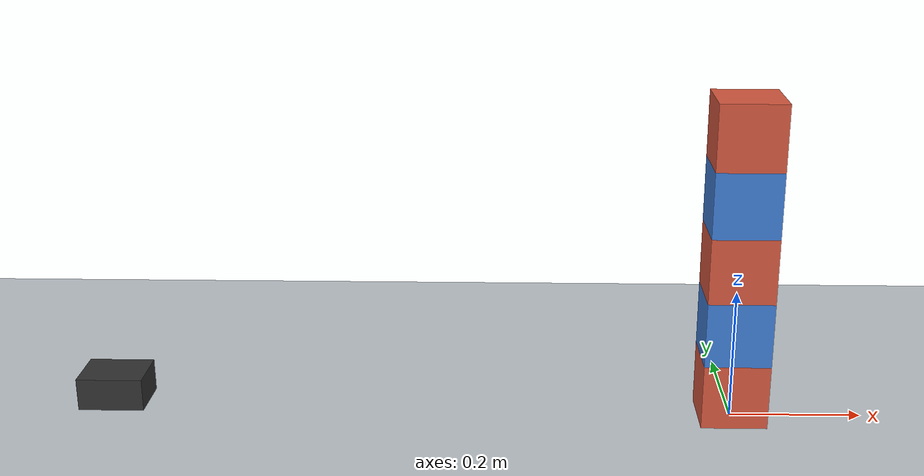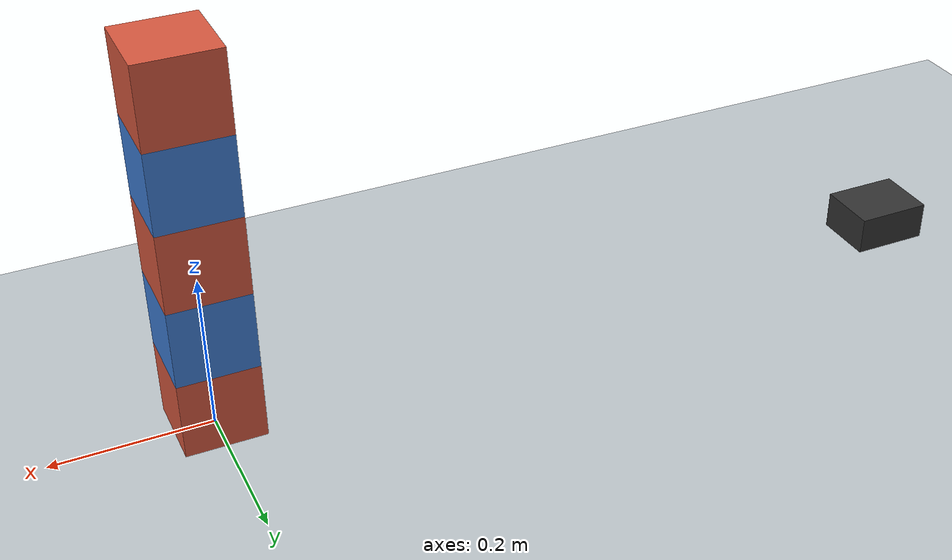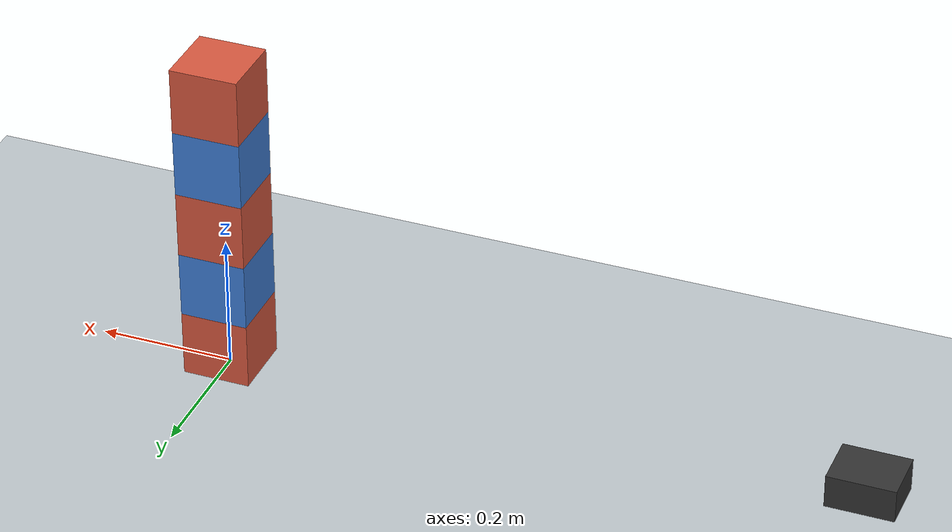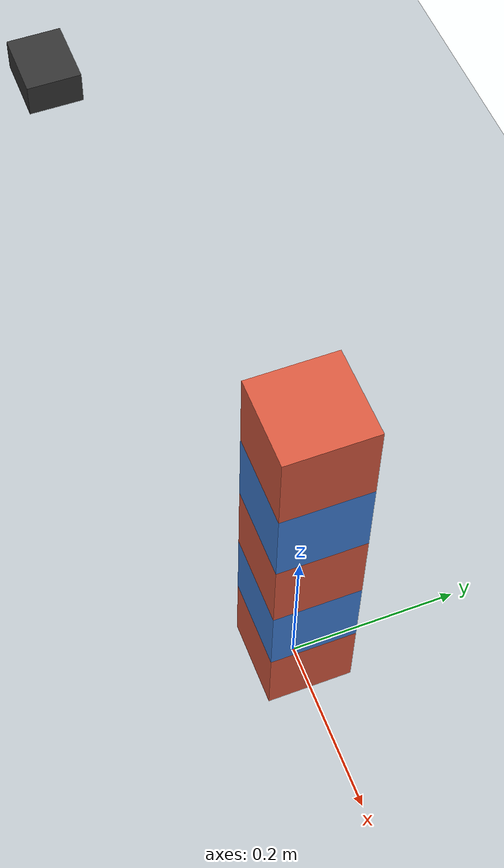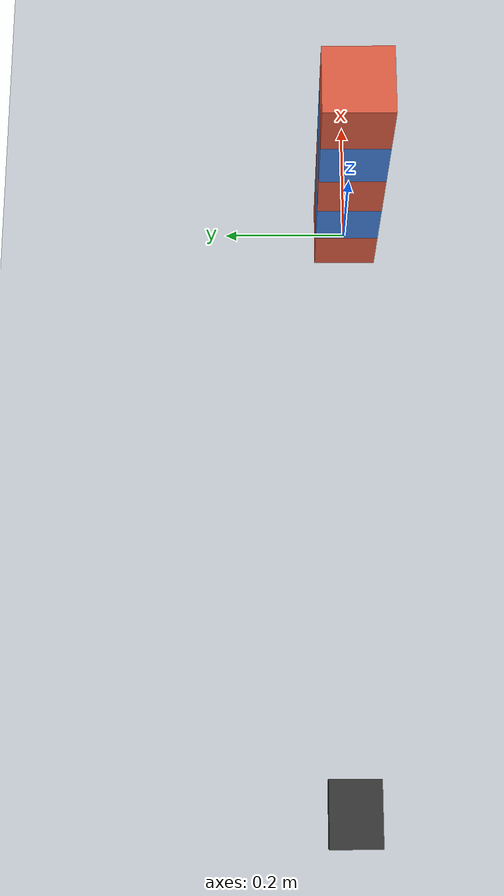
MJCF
<mujoco model="five_block_stack_push">
  <option timestep="0.002" integrator="implicitfast" gravity="0 0 -9.81"/>

  <visual>
    <global offwidth="1280" offheight="720"/>
  </visual>

  <asset>
    <material name="floor_mat" rgba="0.75 0.78 0.8 1"/>
    <material name="block_mat_a" rgba="0.85 0.35 0.25 1"/>
    <material name="block_mat_b" rgba="0.25 0.5 0.85 1"/>
    <material name="pusher_mat" rgba="0.2 0.2 0.2 1"/>
  </asset>

  <worldbody>
    <light name="sun" pos="0 0 3" dir="0 0 -1" directional="true"/>
    <geom name="floor" type="plane" size="3 3 0.1" material="floor_mat" friction="0.4 0.005 0.0001"/>

    <body name="block1" pos="0 0 0.05">
      <freejoint name="block1_free"/>
      <geom name="block1_geom" type="box" size="0.05 0.05 0.05" material="block_mat_a" density="1000" friction="0.4 0.005 0.0001"/>
    </body>
    <body name="block2" pos="0 0 0.15">
      <freejoint name="block2_free"/>
      <geom name="block2_geom" type="box" size="0.05 0.05 0.05" material="block_mat_b" density="1000" friction="0.4 0.005 0.0001"/>
    </body>
    <body name="block3" pos="0 0 0.25">
      <freejoint name="block3_free"/>
      <geom name="block3_geom" type="box" size="0.05 0.05 0.05" material="block_mat_a" density="1000" friction="0.4 0.005 0.0001"/>
    </body>
    <body name="block4" pos="0 0 0.35">
      <freejoint name="block4_free"/>
      <geom name="block4_geom" type="box" size="0.05 0.05 0.05" material="block_mat_b" density="1000" friction="0.4 0.005 0.0001"/>
    </body>
    <body name="block5" pos="0 0 0.45">
      <freejoint name="block5_free"/>
      <geom name="block5_geom" type="box" size="0.05 0.05 0.05" material="block_mat_a" density="1000" friction="0.4 0.005 0.0001"/>
    </body>

    <body name="pusher" pos="-0.95 0 0.04">
      <joint name="pusher_slide" type="slide" axis="1 0 0" limited="true" range="0 0.94" damping="0"/>
      <geom name="pusher_head" type="box" size="0.05 0.04 0.025" mass="5" material="pusher_mat" friction="0.4 0.005 0.0001"/>
    </body>
  </worldbody>

  <actuator>
    <velocity name="pusher_drive" joint="pusher_slide" kv="500" ctrllimited="true" ctrlrange="-2 2" forcelimited="true" forcerange="-150 150"/>
  </actuator>

  <keyframe>
    <key name="start" ctrl="1"/>
  </keyframe>
</mujoco>
